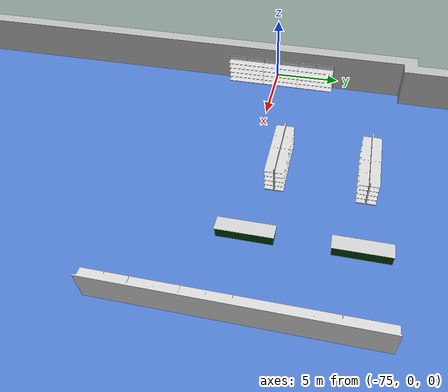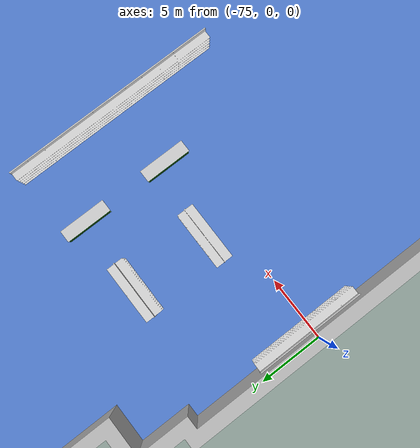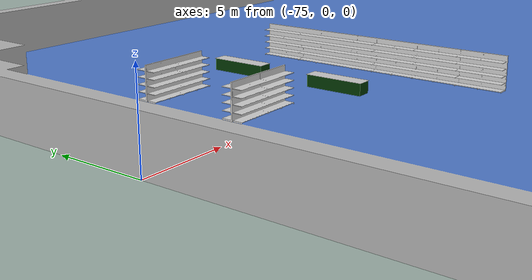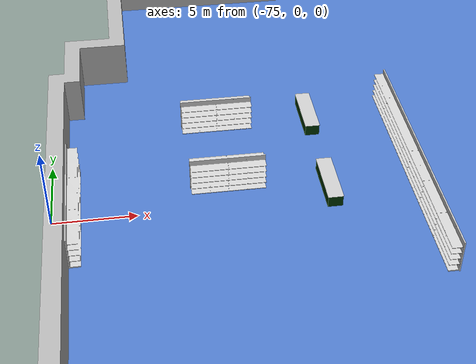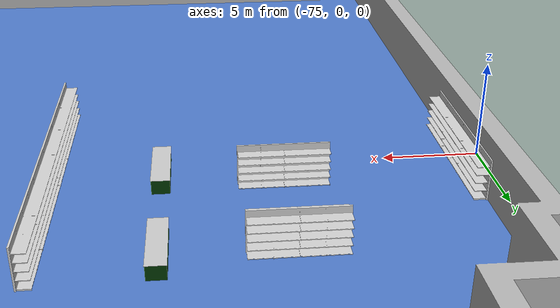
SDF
<sdf version='1.4'>
  <world name='default'>
    <!-- A global light source -->
    <include>
      <uri>model://sun</uri>
    </include>

    <!-- A ground plane -->

    <physics type="ode">
      <real_time_update_rate>1000.0</real_time_update_rate>
      <max_step_size>0.001</max_step_size>
      <real_time_factor>1</real_time_factor>
      <ode>
        <solver>
          <type>quick</type>
          <iters>150</iters>
          <precon_iters>0</precon_iters>
          <sor>1.400000</sor>
          <use_dynamic_moi_rescaling>1</use_dynamic_moi_rescaling>
        </solver>
        <constraints>
          <cfm>0.00001</cfm>
          <erp>0.2</erp>
          <contact_max_correcting_vel>2000.000000</contact_max_correcting_vel>
          <contact_surface_layer>0.01000</contact_surface_layer>
        </constraints>
      </ode>
    </physics>

    <!-- Shop1 -->
    <model name="shop1">
      <pose>0 0 0  0 0 0</pose>
      <static>true</static>
      <link name="body">
        <visual name="visual">
          <geometry>
            <mesh><uri>model://../../catkin_ws/src/Automatic-Cart/models/shop1/shop1_walls.dae</uri></mesh>
          </geometry>
        </visual>
        <collision name="collide">
          <geometry>
            <mesh><uri>model://../../catkin_ws/src/Automatic-Cart/models/shop1/shop1_walls.dae</uri></mesh>
          </geometry>
        </collision>
      </link>
    </model>

    <model name="shop1a">
      <pose>0 0 0  0 0 0</pose>
      <static>true</static>
      <link name="body">
        <visual name="visual">
          <geometry>
            <mesh><uri>model://../../catkin_ws/src/Automatic-Cart/models/shop1/shop1_tools.dae</uri></mesh>
          </geometry>
        </visual>
      </link>
    </model>

    <scene>
      <ambient>0.4 0.4 0.4 1</ambient>
      <background>0.7 0.7 0.7 1</background>
      <shadows>true</shadows>
    </scene>

    <gui fullscreen='0'>
      <camera name='user_camera'>
        <pose>0.0 0.0 17.0 0 1.5708 0</pose>
        <view_controller>orbit</view_controller>
      </camera>
    </gui>
  </world>
</sdf>
